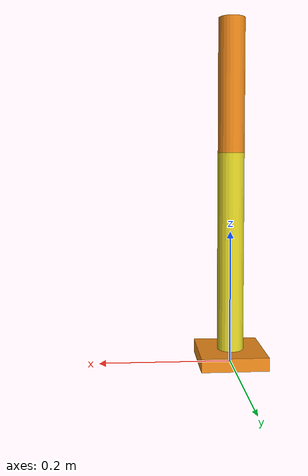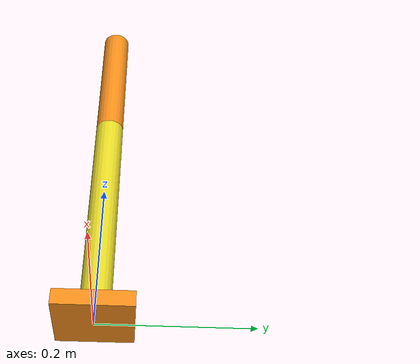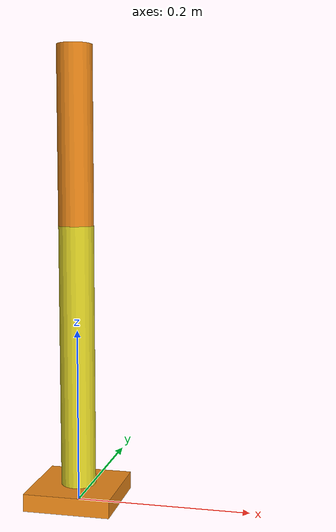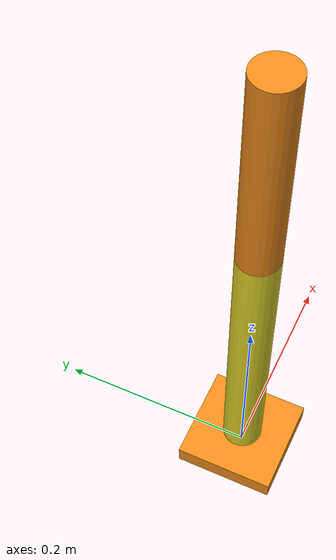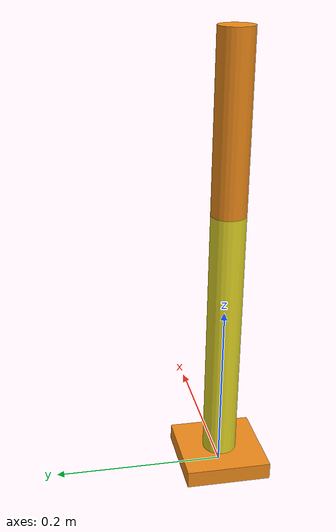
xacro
<?xml version="1.0"?>
<robot name="robotic_arm" xmlns:xacro="http://www.ros.org/wiki/xacro">

    <xacro:include filename="arm_gazebo.xacro"/>

    <xacro:property name = "arm_base_length" value="0.1" />
    <xacro:property name = "arm_base_width" value="0.1" />
    <xacro:property name = "arm_base_height" value="0.02" />
    <xacro:property name = "forearm_radius" value="0.02" />
    <xacro:property name = "forearm_length" value="0.3" />
    <xacro:property name = "arm_length" value="0.2" />
    <xacro:property name = "hand_radius" value="0.02" />

    <link name="arm_base_link">
        <visual>
            <geometry>
                <box size="${arm_base_length} ${arm_base_width} ${arm_base_height}"/>
            </geometry>
            <origin xyz="0 0 ${arm_base_height/2.0}" rpy="0 0 0"/>
            <material name = "orange" />
        </visual>
        <collision>
            <geometry>
                <box size="0.1 0.1 0.02"/>
            </geometry>
            <origin xyz="0 0 ${arm_base_height/2.0}" rpy="0 0 0"/>
        </collision>
        <xacro:box_inertia m="0.5" l="${2*arm_base_length}" w="${2*arm_base_width}" h="${2*arm_base_height}"
                           xyz="0 0 ${arm_base_height/2.0}" rpy="0 0 0"/>
    </link>

    <link name="forearm_link">
        <visual>
            <geometry>
                <cylinder radius="${forearm_radius}" length="${forearm_length}" />
            </geometry>
            <origin xyz=" 0 0 ${forearm_length/2.0}" rpy="0 0 0"/>
            <material name = "yellow" />
        </visual>
        <collision>
            <geometry>
                <cylinder radius="0.02" length="${forearm_length}" />
            </geometry>
            <origin xyz=" 0 0 ${forearm_length/2.0}" rpy="0 0 0"/>
        </collision>
        <xacro:cylinder_inertia m="0.3" r="${2*forearm_radius}" h="${2*forearm_length}"
                                xyz="0 0 ${forearm_length/2.0}" rpy = "0 0 0"/>
    </link>

    <link name="hand_link">
        <visual>
            <geometry>
                <cylinder radius="${hand_radius}" length="${arm_length}" />
            </geometry>
            <origin xyz=" 0 0 ${arm_length/2.0}" rpy="0 0 0"/>
            <material name = "orange" />
        </visual>
        <collision>
            <geometry>
                <cylinder radius="${hand_radius}" length="${arm_length}" />
            </geometry>
            <origin xyz=" 0 0 ${arm_length/2.0}" rpy="0 0 0"/>
        </collision>
        <xacro:cylinder_inertia m="0.3" r="${2*hand_radius}" h="${2*arm_length}"
                                xyz=" 0 0 ${arm_length/2.0}" rpy = "0 0 0"/>
    </link>

    <joint name="arm_base_forearm_joint" type="revolute">
        <parent link="arm_base_link"/>
        <child link="forearm_link"/>
        <origin xyz="0 0 ${arm_base_height}" rpy="0 0 0"/>
        <axis xyz = "0 1 0" />
        <limit effort="100" velocity="100" lower="0" upper="${pi/ 2.0}"/>
        <dynamics friction="0.05" damping="0.1"/>
    </joint>

    <joint name="forearm_hand_joint" type="revolute">
        <parent link="forearm_link"/>
        <child link="hand_link"/>
        <origin xyz="0 0 ${forearm_length}" rpy="0 0 0"/>
        <axis xyz = "0 1 0" />
        <limit effort="100" velocity="100" lower="0" upper="${pi/ 2.0}"/>
        <dynamics friction="0.05" damping="0.1"/>
    </joint>

</robot>
